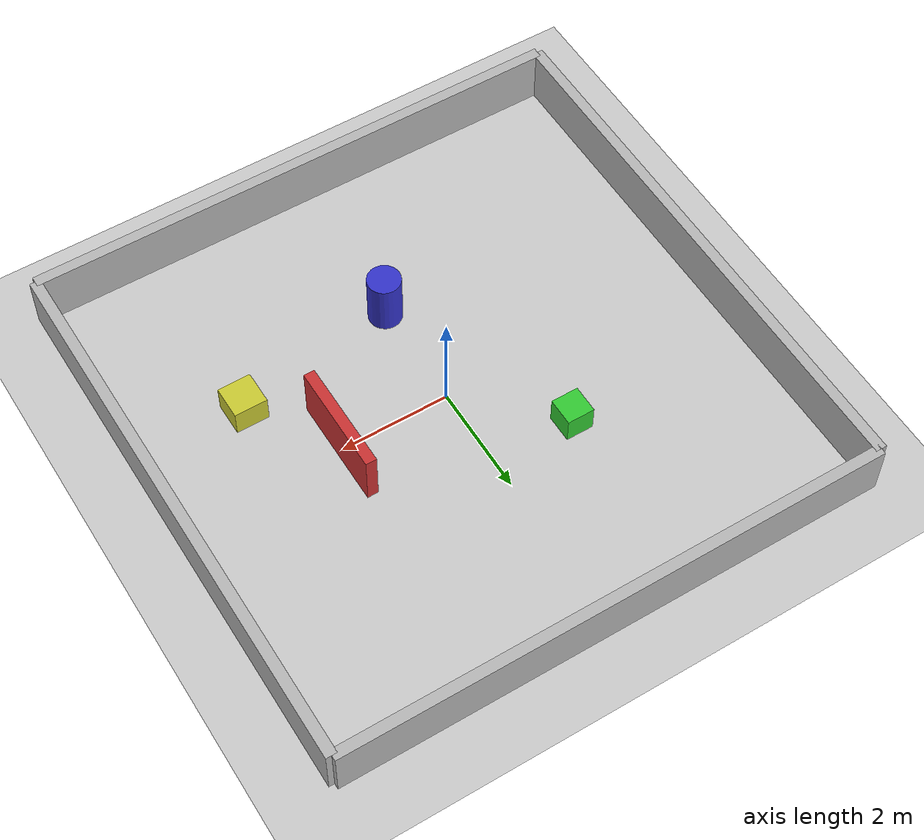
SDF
<?xml version="1.0"?>
<sdf version="1.6">
  <world name="training_world">

    <!-- Lighting -->
    <include>
      <uri>model://sun</uri>
    </include>

    <!-- Ground plane -->
    <include>
      <uri>model://ground_plane</uri>
    </include>

    <!-- Physics -->
    <physics type="ode">
      <real_time_update_rate>1000.0</real_time_update_rate>
      <max_step_size>0.001</max_step_size>
      <real_time_factor>1</real_time_factor>
    </physics>

    <!-- Obstacle 1: Box wall -->
    <model name="wall_1">
      <static>true</static>
      <pose>2.0 0.0 0.5 0 0 0</pose>
      <link name="link">
        <collision name="collision">
          <geometry><box><size>0.2 2.0 1.0</size></box></geometry>
        </collision>
        <visual name="visual">
          <geometry><box><size>0.2 2.0 1.0</size></box></geometry>
          <material>
            <ambient>0.8 0.2 0.2 1</ambient>
            <diffuse>0.8 0.2 0.2 1</diffuse>
          </material>
        </visual>
      </link>
    </model>

    <!-- Obstacle 2: Box -->
    <model name="box_obstacle_1">
      <static>true</static>
      <pose>-1.5 1.5 0.25 0 0 0</pose>
      <link name="link">
        <collision name="collision">
          <geometry><box><size>0.5 0.5 0.5</size></box></geometry>
        </collision>
        <visual name="visual">
          <geometry><box><size>0.5 0.5 0.5</size></box></geometry>
          <material>
            <ambient>0.2 0.8 0.2 1</ambient>
            <diffuse>0.2 0.8 0.2 1</diffuse>
          </material>
        </visual>
      </link>
    </model>

    <!-- Obstacle 3: Cylinder -->
    <model name="cylinder_obstacle_1">
      <static>true</static>
      <pose>0.0 -2.0 0.5 0 0 0</pose>
      <link name="link">
        <collision name="collision">
          <geometry><cylinder><radius>0.3</radius><length>1.0</length></cylinder></geometry>
        </collision>
        <visual name="visual">
          <geometry><cylinder><radius>0.3</radius><length>1.0</length></cylinder></geometry>
          <material>
            <ambient>0.2 0.2 0.8 1</ambient>
            <diffuse>0.2 0.2 0.8 1</diffuse>
          </material>
        </visual>
      </link>
    </model>

    <!-- Obstacle 4: Box -->
    <model name="box_obstacle_2">
      <static>true</static>
      <pose>3.0 -1.5 0.25 0 0 0</pose>
      <link name="link">
        <collision name="collision">
          <geometry><box><size>0.6 0.6 0.5</size></box></geometry>
        </collision>
        <visual name="visual">
          <geometry><box><size>0.6 0.6 0.5</size></box></geometry>
          <material>
            <ambient>0.8 0.8 0.2 1</ambient>
            <diffuse>0.8 0.8 0.2 1</diffuse>
          </material>
        </visual>
      </link>
    </model>

    <!-- Boundary walls -->
    <model name="boundary_north">
      <static>true</static>
      <pose>0.0 5.0 0.5 0 0 0</pose>
      <link name="link">
        <collision name="collision">
          <geometry><box><size>10.0 0.2 1.0</size></box></geometry>
        </collision>
        <visual name="visual">
          <geometry><box><size>10.0 0.2 1.0</size></box></geometry>
        </visual>
      </link>
    </model>

    <model name="boundary_south">
      <static>true</static>
      <pose>0.0 -5.0 0.5 0 0 0</pose>
      <link name="link">
        <collision name="collision">
          <geometry><box><size>10.0 0.2 1.0</size></box></geometry>
        </collision>
        <visual name="visual">
          <geometry><box><size>10.0 0.2 1.0</size></box></geometry>
        </visual>
      </link>
    </model>

    <model name="boundary_east">
      <static>true</static>
      <pose>5.0 0.0 0.5 0 0 0</pose>
      <link name="link">
        <collision name="collision">
          <geometry><box><size>0.2 10.0 1.0</size></box></geometry>
        </collision>
        <visual name="visual">
          <geometry><box><size>0.2 10.0 1.0</size></box></geometry>
        </visual>
      </link>
    </model>

    <model name="boundary_west">
      <static>true</static>
      <pose>-5.0 0.0 0.5 0 0 0</pose>
      <link name="link">
        <collision name="collision">
          <geometry><box><size>0.2 10.0 1.0</size></box></geometry>
        </collision>
        <visual name="visual">
          <geometry><box><size>0.2 10.0 1.0</size></box></geometry>
        </visual>
      </link>
    </model>

  </world>
</sdf>
